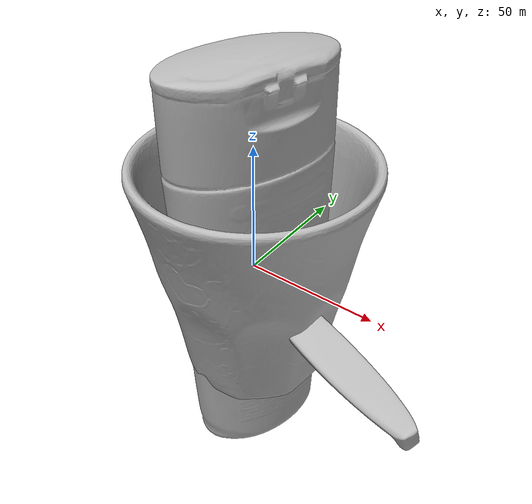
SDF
<sdf version="1.4">
 <world name="default">
  <light name="light1" type="point">
   <pose>0 0 1 0 0 0</pose>
   <diffuse>3 3 3 1</diffuse>
   <specular>3 3 3 1</specular>
  </light>
  <light name="light2" type="point">
   <pose>0 0.5 2 0 0 0</pose>
   <diffuse>1 1 1 1</diffuse>
   <specular>1 1 1 1</specular>
  </light>
  <light name="light3" type="point">
   <pose>0 0.5 2 0 0 0</pose>
   <diffuse>3 3 3 1</diffuse>
   <specular>3 3 3 1</specular>
  </light>
  <scene><ambient>0.7 0.7 0.7</ambient></scene>
  <model name="bottle1">
   <link name="link_bottle1">
    <collision name="default">
     <geometry>
      <mesh><uri>model://conditioner/collision_meshes/collision.obj</uri><scale>1.0 1.0 1.0</scale></mesh>
     </geometry>
     <surface>
      <friction><ode><mu>0.5</mu><mu2>0.5</mu2></ode></friction>
      <contact><ode><max_vel>0</max_vel><min_depth>0.0001</min_depth><kp>1e8</kp></ode></contact>
     </surface>
    </collision>
    <visual name="default">
     <geometry>
      <mesh><uri>model://conditioner/visual_meshes/visual.dae</uri><scale>1.0 1.0 1.0</scale></mesh>
     </geometry>
    </visual>
    <inertial>
     <mass>0.31316134333610535</mass>
     <pose>-0.00055994390277192 -0.0001729748910292983 0.004359682556241751 -0.005038373535624127 0.01530604069317056 0.015072338587352078</pose>
     <inertia>
      <ixx>0.0006812382</ixx>
      <iyy>0.000729753</iyy>
      <izz>0.000105037434</izz>
      <ixy>0</ixy>
      <ixz>0</ixz>
      <iyz>0</iyz>
     </inertia>
    </inertial>
   </link>
   <pose>-0.040499381721019745 -0.08022817969322205 0.08122974634170532 0.03689344645021555 -0.015660353028548946 -1.880558201123374</pose>
  </model>
  <model name="bottle2">
   <link name="link_bottle2">
    <collision name="default">
     <geometry>
      <mesh><uri>model://pigeon/collision_meshes/collision.obj</uri><scale>1.0 1.0 1.0</scale></mesh>
     </geometry>
     <surface>
      <friction><ode><mu>0.5</mu><mu2>0.5</mu2></ode></friction>
      <contact><ode><max_vel>0</max_vel><min_depth>0.0001</min_depth><kp>1e8</kp></ode></contact>
     </surface>
    </collision>
    <visual name="default">
     <geometry><mesh><uri>model://pigeon/visual_meshes/visual.dae</uri><scale>1.0 1.0 1.0</scale></mesh></geometry>
    </visual>
    <inertial>
     <mass>0.6510184407234192</mass>
     <pose>-9.675473847892135e-05 -0.00019276776583865285 -0.01593620888888836 -0.011704407543161608 -0.0012978192378484078 -0.04198827283679603</pose>
     <inertia>
      <ixx>0.0016273881</ixx>
      <iyy>0.0017372583</iyy>
      <izz>0.00033475916</izz>
      <ixy>0</ixy>
      <ixz>0</ixz>
      <iyz>0</iyz>
     </inertia>
    </inertial>
   </link>
   <pose>0.1210225448012352 -0.3711988627910614 0.09864477813243866 2.3562010368222264e-05 3.161470005479051e-06 0.133608656809435</pose>
  </model>
  <model name="silverware1">
   <link name="link_silverware1">
    <collision name="default">
     <geometry>
      <mesh><uri>model://doraemon_spoon/collision_meshes/collision.obj</uri><scale>1.0 1.0 1.0</scale></mesh>
     </geometry>
     <surface>
      <friction><ode><mu>0.5</mu><mu2>0.5</mu2></ode></friction>
      <contact><ode><max_vel>0</max_vel><min_depth>0.0001</min_depth><kp>1e8</kp></ode></contact>
     </surface>
    </collision>
    <visual name="default">
     <geometry>
      <mesh><uri>model://doraemon_spoon/visual_meshes/visual.dae</uri><scale>1.0 1.0 1.0</scale></mesh>
     </geometry>
    </visual>
    <inertial>
     <mass>0.020366016775369644</mass>
     <pose>-0.022165074944496155 -0.0006374584045261145 -0.0033325462136417627 -0.009147200915366215 0.0738041822243956 -0.014123826891092987</pose>
     <inertia>
      <ixx>1.5952605e-06</ixx>
      <iyy>4.5307766e-05</iyy>
      <izz>4.6078047e-05</izz>
      <ixy>0</ixy>
      <ixz>0</ixz>
      <iyz>0</iyz>
     </inertia>
    </inertial>
   </link>
   <pose>-0.019155757501721382 -0.3664987087249756 0.014739317819476128 0.27903107466665344 -0.01033663541939226 -0.33858848066933533</pose>
  </model>
  <model name="stationery1">
   <link name="link_stationery1">
    <collision name="default">
     <geometry>
      <mesh><uri>model://correction_fuid/collision_meshes/collision.obj</uri><scale>1.0 1.0 1.0</scale></mesh>
     </geometry>
     <surface>
      <friction><ode><mu>0.5</mu><mu2>0.5</mu2></ode></friction>
      <contact><ode><max_vel>0</max_vel><min_depth>0.0001</min_depth><kp>1e8</kp></ode></contact>
     </surface>
    </collision>
    <visual name="default">
     <geometry>
      <mesh><uri>model://correction_fuid/visual_meshes/visual.dae</uri><scale>1.0 1.0 1.0</scale></mesh>
     </geometry>
    </visual>
    <inertial>
     <mass>0.02487199380993843</mass>
     <pose>-0.00012557733862195164 -0.0009722901741042733 -0.001618212671019137 -0.010846607936808557 0.019488255039962172 -0.015992454917835536</pose>
     <inertia>
      <ixx>2.4088951e-05</ixx>
      <iyy>1.4578937e-06</iyy>
      <izz>2.4715917e-05</izz>
      <ixy>0</ixy>
      <ixz>0</ixz>
      <iyz>0</iyz>
     </inertia>
    </inertial>
   </link>
   <pose>-0.04885508120059967 -0.31885194778442383 0.009632831439375877 -0.0017271237045825955 -0.05616801171581448 1.0890012143948604</pose>
  </model>
  <model name="bowl1">
   <link name="link_bowl1">
    <collision name="default">
     <geometry>
      <mesh><uri>model://doraemon_bowl/collision_meshes/collision.obj</uri><scale>1.0 1.0 1.0</scale></mesh>
     </geometry>
     <surface>
      <friction><ode><mu>0.5</mu><mu2>0.5</mu2></ode></friction>
      <contact><ode><max_vel>0</max_vel><min_depth>0.0001</min_depth><kp>1e8</kp></ode></contact>
     </surface>
    </collision>
    <visual name="default">
     <geometry>
      <mesh><uri>model://doraemon_bowl/visual_meshes/visual.dae</uri><scale>1.0 1.0 1.0</scale></mesh>
     </geometry>
    </visual>
    <inertial>
     <mass>0.06713785231113434</mass>
     <pose>-0.014629548415541649 0.000485710974317044 -0.0020864871330559254 -0.005093962398800634 -0.10568405274446478 -0.026426476578293747</pose>
     <inertia>
      <ixx>9.309732e-05</ixx>
      <iyy>0.00012251528</iyy>
      <izz>0.00018024874</izz>
      <ixy>0</ixy>
      <ixz>0</ixz>
      <iyz>0</iyz>
     </inertia>
    </inertial>
   </link>
   <pose>0.2224976122379303 0.10342387855052948 0.02590547874569893 0.00859361504208162 0.006343821045888817 0.400648627663602</pose>
  </model>
  <model name="cup1">
   <link name="link_cup1">
    <collision name="default">
     <geometry>
      <mesh><uri>model://hello_kitty_cup/collision_meshes/collision.obj</uri><scale>1.0 1.0 1.0</scale></mesh>
     </geometry>
     <surface>
      <friction><ode><mu>0.5</mu><mu2>0.5</mu2></ode></friction>
      <contact><ode><max_vel>0</max_vel><min_depth>0.0001</min_depth><kp>1e8</kp></ode></contact>
     </surface>
    </collision>
    <visual name="default">
     <geometry>
      <mesh><uri>model://hello_kitty_cup/visual_meshes/visual.dae</uri><scale>1.0 1.0 1.0</scale></mesh>
     </geometry>
    </visual>
    <inertial>
     <mass>0.13384777307510376</mass>
     <pose>0.00027251095161773264 0.00027950218645855784 0.0030449770856648684 0.057791450277227645 0.007964955326408191 -0.02045228086216793</pose>
     <inertia>
      <ixx>0.0001843247</ixx>
      <iyy>0.0001863793</iyy>
      <izz>0.00015541737</izz>
      <ixy>0</ixy>
      <ixz>0</ixz>
      <iyz>0</iyz>
     </inertia>
    </inertial>
   </link>
   <pose>0.15969878435134888 -0.2573055028915405 0.046213969588279724 -0.0057103766464970535 0.010784273971594772 -0.17156344691331835</pose>
  </model>
  <model name="plate1">
   <link name="link_plate1">
    <collision name="default">
     <geometry>
      <mesh><uri>model://hello_kitty_plate/collision_meshes/collision.obj</uri><scale>1.0 1.0 1.0</scale></mesh>
     </geometry>
     <surface>
      <friction><ode><mu>0.5</mu><mu2>0.5</mu2></ode></friction>
      <contact><ode><max_vel>0</max_vel><min_depth>0.0001</min_depth><kp>1e8</kp></ode></contact>
     </surface>
    </collision>
    <visual name="default">
     <geometry>
      <mesh><uri>model://hello_kitty_plate/visual_meshes/visual.dae</uri><scale>1.0 1.0 1.0</scale></mesh>
     </geometry>
    </visual>
    <inertial>
     <mass>0.0821625292301178</mass>
     <pose>0.0073142931796610355 0.00028937371098436415 -0.0027947186026722193 -0.0001043184795654353 -0.007054440405958318 -0.014449014916312054</pose>
     <inertia>
      <ixx>0.00015843393</ixx>
      <iyy>0.00029901267</iyy>
      <izz>0.00045402072</izz>
      <ixy>0</ixy>
      <ixz>0</ixz>
      <iyz>0</iyz>
     </inertia>
    </inertial>
   </link>
   <pose>0.0038082515820860863 0.30758997797966003 0.008291377685964108 0.00046404308530480464 0.004170872205888681 -0.33540730272394836</pose>
  </model>
  <physics type="ode">
   <max_contacts>50</max_contacts>
   <ode>
    <solver><type>quick</type><iters>75</iters></solver>
    <constraints>
     <contact_max_correcting_vel>0</contact_max_correcting_vel>
     <contact_surface_layer>0</contact_surface_layer>
    </constraints>
   </ode>
  </physics>
 </world>
</sdf>
